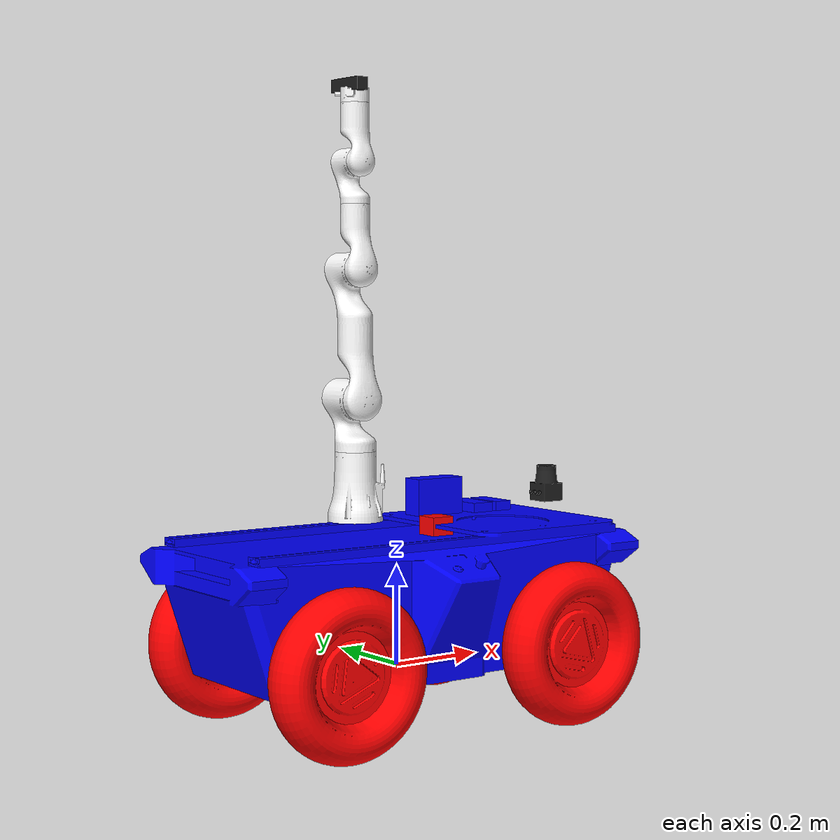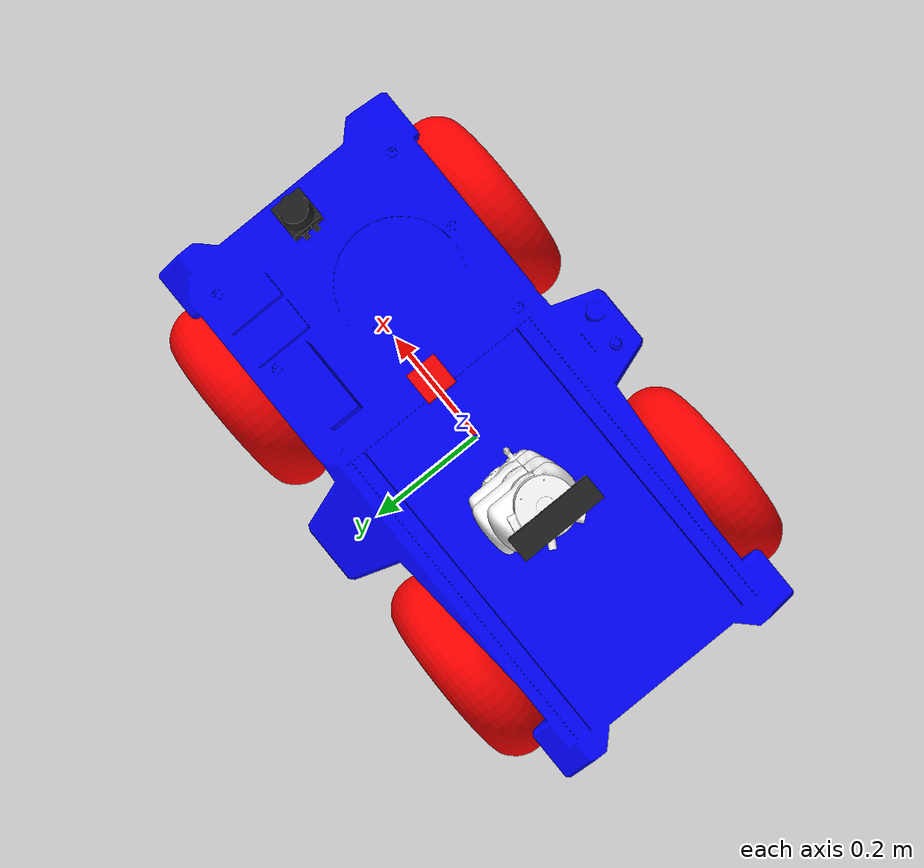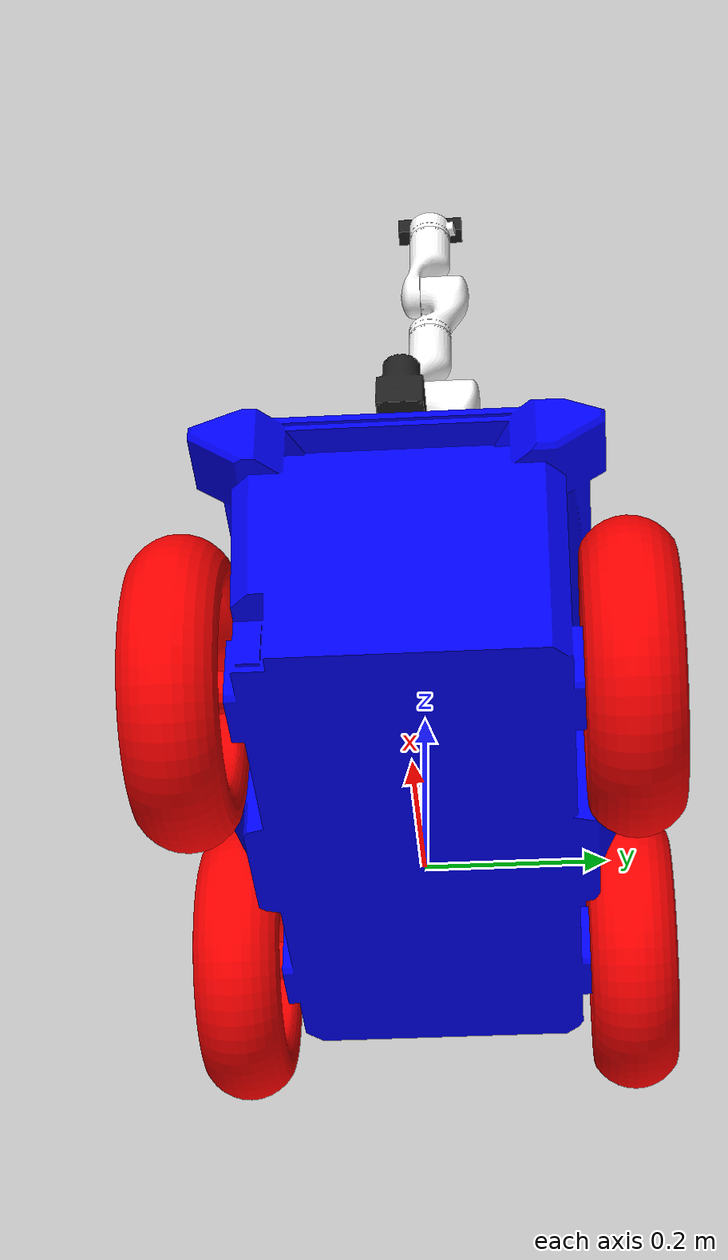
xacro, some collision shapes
<?xml version="1.0"?>
<robot name="arm" xmlns:xacro="http://www.ros.org/wiki/xacro">

    <xacro:include filename="$(find caurobot_description)/xacro/caurobot.xacro" />
    <xacro:include filename="$(find caurobot_description)/xacro/lidar_gazebo.xacro" />
    <xacro:include filename="$(find rm_65_description)/urdf/rm_65.urdf.xacro" />
    <xacro:include filename="$(find realsense_ros_gazebo)/xacro/tracker.xacro"/>
    <xacro:include filename="$(find realsense_ros_gazebo)/xacro/depthcam.xacro"/>
    <xacro:property name="M_PI" value="3.1415926"/>

     <xacro:realsense_d435 sensor_name="d435" parent_link="Link6" rate="10">
    <origin rpy="0 -${M_PI/2} ${M_PI} " xyz="0 0 0.005"/>
  </xacro:realsense_d435>
    <gazebo reference="d435_link">
     <material>Gazebo/Black</material>
 </gazebo>

    <xacro:property name="lidar_offset_x" value="0.38" />
    <xacro:property name="lidar_offset_y" value="0" />
    <xacro:property name="lidar_offset_z" value="0.30" />
    <xacro:property name="arm_offset_x" value="-0.1" />
    <xacro:property name="arm_offset_y" value="0" />
    <xacro:property name="arm_offset_z" value="0.30" />

    <!-- lidar -->
    <joint name="lidar_joint" type="fixed">
        <origin xyz="${lidar_offset_x} ${lidar_offset_y} ${lidar_offset_z}" rpy="0 0 0" />
        <parent link="base_link1"/>
        <child link="laser_link"/>
    </joint>
    <!-- lidar -->
    <joint name="arm_joint" type="fixed">
        <origin xyz="${arm_offset_x} ${arm_offset_y} ${arm_offset_z}" rpy="0 0 0" />
        <parent link="base_link1"/>
        <child link="dummy"/>
    </joint>

    <xacro:rplidar/>

    <caurobot_gazebo/>

</robot>

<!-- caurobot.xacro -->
<!-- This xacro was created by ZZX-->

<robot xmlns:xacro="http://www.ros.org/wiki/xacro"

    xmlns:sensor="http://playerstage.sourceforge.net/gazebo/xmlschema/#sensor"

    xmlns:controller="http://playerstage.sourceforge.net/gazebo/xmlschema/#controller"

    xmlns:interface="http://playerstage.sourceforge.net/gazebo/xmlschema/#interface"

    name="ls_run_robot">
<link
    name="base_link1">
    <inertial>
      <origin
        xyz="0.0046019 0.001076 0.13741"
        rpy="0 0 0" />
      <mass
        value="2000.936" />
      <inertia
        ixx="1.394"
        ixy="-0.0012908"
        ixz="-0.0010527"
        iyy="4.9931"
        iyz="-0.00089468"
        izz="5.5153" />
    </inertial>
    <visual>
      <origin
        xyz="0 0 0"
        rpy="0 0 0" />
      <geometry>
        <mesh
          filename="package://caurobot_description/meshes/base_link.STL" />
      </geometry>
      <material
        name="">
        <color
          rgba="0 0 1 1" />
      </material>
    </visual>
    <collision>
      <origin
        xyz="0 0 0"
        rpy="0 0 0" />
      <geometry>
        <mesh
          filename="package://caurobot_description/meshes/base_link.STL" />
      </geometry>
    </collision>
  </link>
  <link
    name="left_front_link">
    <inertial>
      <origin
        xyz="8.1201E-07 -0.022137 -1.9582E-06"
        rpy="0 0 0" />
      <mass
        value="15.6581" />
      <inertia
        ixx="0.045747"
        ixy="-8.2978E-08"
        ixz="-2.9744E-09"
        iyy="0.084763"
        iyz="2.001E-07"
        izz="0.045747" />
    </inertial>
    <visual>
      <origin
        xyz="0 0 0"
        rpy="0 0 0" />
      <geometry>
        <mesh
          filename="package://caurobot_description/meshes/left_front_link.STL" />
      </geometry>
      <material
        name="">
        <color
          rgba="1 0 0 1" />
      </material>
    </visual>
    <collision>
      <origin
        xyz="0 0 0"
        rpy="0 0 0" />
      <geometry>
        <mesh
          filename="package://caurobot_description/meshes/left_front_link.STL" />
      </geometry>
    </collision>
  </link>
  <joint
    name="left_front_joint"
    type="continuous">
    <origin
      xyz="0.269999999999996 0.251796098814331 0.0480000000000079"
      rpy="0 0 0" />
    <parent
      link="base_link1" />
    <child
      link="left_front_link" />
    <axis
      xyz="0 -1 0" />
  </joint>
  <link
    name="right_front_link">
    <inertial>
      <origin
        xyz="-5.0627E-07 0.022137 -2.0585E-06"
        rpy="0 0 0" />
      <mass
        value="15.6581" />
      <inertia
        ixx="0.045747"
        ixy="-5.1736E-08"
        ixz="1.9495E-09"
        iyy="0.084763"
        iyz="-2.1036E-07"
        izz="0.045747" />
    </inertial>
    <visual>
      <origin
        xyz="0 0 0"
        rpy="0 0 0" />
      <geometry>
        <mesh
          filename="package://caurobot_description/meshes/right_front_link.STL" />
      </geometry>
      <material
        name="">
        <color
          rgba="1 0 0 1" />
      </material>
    </visual>
    <collision>
      <origin
        xyz="0 0 0"
        rpy="0 0 0" />
      <geometry>
        <mesh
          filename="package://caurobot_description/meshes/right_front_link.STL" />
      </geometry>
    </collision>
  </link>
  <joint
    name="right_front_joint"
    type="continuous">
    <origin
      xyz="0.270000000000003 -0.251796098814325 0.0479999999999995"
      rpy="0 0 0" />
    <parent
      link="base_link1" />
    <child
      link="right_front_link" />
    <axis
      xyz="0 1 0" />
  </joint>
  <link
    name="left_back_link">
    <inertial>
      <origin
        xyz="8.1201E-07 -0.022137 -1.9582E-06"
        rpy="0 0 0" />
      <mass
        value="15.6581" />
      <inertia
        ixx="0.045747"
        ixy="-8.2978E-08"
        ixz="-2.9744E-09"
        iyy="0.084763"
        iyz="2.001E-07"
        izz="0.045747" />
    </inertial>
    <visual>
      <origin
        xyz="0 0 0"
        rpy="0 0 0" />
      <geometry>
        <mesh
          filename="package://caurobot_description/meshes/left_back_link.STL" />
      </geometry>
      <material
        name="">
        <color
          rgba="1 0 0 1" />
      </material>
    </visual>
    <collision>
      <origin
        xyz="0 0 0"
        rpy="0 0 0" />
      <geometry>
        <mesh
          filename="package://caurobot_description/meshes/left_back_link.STL" />
      </geometry>
    </collision>
  </link>
  <joint
    name="left_back_joint"
    type="continuous">
    <origin
      xyz="-0.270000000000004 0.251796098814323 0.0480000000000005"
      rpy="0 0 0" />
    <parent
      link="base_link1" />
    <child
      link="left_back_link" />
    <axis
      xyz="0 -1 0" />
  </joint>
  <link
    name="right_back_link">
    <inertial>
      <origin
        xyz="8.1201E-07 0.022137 -1.9582E-06"
        rpy="0 0 0" />
      <mass
        value="15.6581" />
      <inertia
        ixx="0.045747"
        ixy="8.2978E-08"
        ixz="-2.9744E-09"
        iyy="0.084763"
        iyz="-2.001E-07"
        izz="0.045747" />
    </inertial>
    <visual>
      <origin
        xyz="0 0 0"
        rpy="0 0 0" />
      <geometry>
        <mesh
          filename="package://caurobot_description/meshes/right_back_link.STL" />
      </geometry>
      <material
        name="">
        <color
          rgba="1 0 0 1" />
      </material>
    </visual>
    <collision>
      <origin
        xyz="0 0 0"
        rpy="0 0 0" />
      <geometry>
        <mesh
          filename="package://caurobot_description/meshes/right_back_link.STL" />
      </geometry>
    </collision>
  </link>
  <joint
    name="right_back_joint"
    type="continuous">
    <origin
      xyz="-0.269999999999997 -0.251796098814332 0.0479999999999922"
      rpy="0 0 0" />
    <parent
      link="base_link1" />
    <child
      link="right_back_link" />
    <axis
      xyz="0 1 0" />
  </joint>
<gazebo reference="base_link1">
            <material>Gazebo/Yellow</material>
</gazebo>
<gazebo reference="left_front_link">
            <material>Gazebo/Black</material>

</gazebo>

<gazebo reference="right_front_link">
            <material>Gazebo/Black</material>

</gazebo>

<gazebo reference="left_back_link">
            <material>Gazebo/Black</material>

</gazebo>

<gazebo reference="right_back_link">
            <material>Gazebo/Black</material>

</gazebo>

    <xacro:property name="imu_size"     value="0.05" />
    <xacro:property name="imu_m" value="0.01" /> <!-- imu质量 -->
    <xacro:property name="imu_offset_x" value="0.10" />
    <xacro:property name="imu_offset_y" value="0" />
    <xacro:property name="imu_offset_z" value="0.27" />
    <!-- imu -->

    <link name="imu">
        <visual>
            <origin rpy="0 0 0" xyz="0 0 0" />
            <geometry>
                    <box size="${imu_size} ${imu_size} ${imu_size}"/>
            </geometry>
            <material name= "red" >
              <color rgba="1.0 0.0 0.0 1.0" />
            </material>
        </visual>
        <collision>
            <geometry>
                <box size="${imu_size} ${imu_size} ${imu_size}" />
            </geometry>
            <origin xyz="0.0 0.0 0" rpy="0.0 0.0 0.0" />
        </collision>
    </link>
    <joint name="imu_joint" type="fixed">
        <origin xyz="${imu_offset_x} ${imu_offset_y} ${imu_offset_z}" rpy="0 0 0" />
        <parent link="base_link1"/>
        <child link="imu"/>
    </joint>

<!-- Transmission is important to link the joints and the controller -->
        <transmission name="left_front_joint_trans">
            <type>transmission_interface/SimpleTransmission</type>
            <joint name="left_front_joint" >
                <hardwareInterface>hardware_interface/VelocityJointInterface</hardwareInterface>
            </joint>
            <actuator name="left_front_joint_motor">
                <hardwareInterface>hardware_interface/VelocityJointInterface</hardwareInterface>
                <mechanicalReduction>1</mechanicalReduction>
            </actuator>
        </transmission>

<!-- Transmission is important to link the joints and the controller -->
        <transmission name="left_back_joint_trans">
            <type>transmission_interface/SimpleTransmission</type>
            <joint name="left_back_joint" >
                <hardwareInterface>hardware_interface/VelocityJointInterface</hardwareInterface>
            </joint>
            <actuator name="left_back_joint_motor">
                <hardwareInterface>hardware_interface/VelocityJointInterface</hardwareInterface>
                <mechanicalReduction>1</mechanicalReduction>
            </actuator>
        </transmission>

    <!-- Transmission is important to link the joints and the controller -->
        <transmission name="right_front_joint_trans">
            <type>transmission_interface/SimpleTransmission</type>
            <joint name="right_front_joint" >
                <hardwareInterface>hardware_interface/VelocityJointInterface</hardwareInterface>
            </joint>
            <actuator name="right_front_joint_motor">
                <hardwareInterface>hardware_interface/VelocityJointInterface</hardwareInterface>
                <mechanicalReduction>1</mechanicalReduction>
            </actuator>
        </transmission>

    <!-- Transmission is important to link the joints and the controller -->
        <transmission name="right_back_joint_trans">
            <type>transmission_interface/SimpleTransmission</type>
            <joint name="right_back_joint" >
                <hardwareInterface>hardware_interface/VelocityJointInterface</hardwareInterface>
            </joint>
            <actuator name="right_back_joint_motor">
                <hardwareInterface>hardware_interface/VelocityJointInterface</hardwareInterface>
                <mechanicalReduction>1</mechanicalReduction>
            </actuator>
        </transmission>

<!-- controller -->
        <gazebo>
    <plugin name="object_controller" filename="libgazebo_ros_planar_move.so">
      <commandTopic>cmd_vel</commandTopic>
      <odometryTopic>odom</odometryTopic>
      <odometryFrame>odom</odometryFrame>
      <odometryRate>20.0</odometryRate>
      <robotBaseFrame>base_link1</robotBaseFrame>
    </plugin>
  </gazebo>

   <gazebo reference="imu">
        <material>Gazebo/Red</material>
    </gazebo>

    <gazebo reference="imu">
        <gravity>true</gravity>
        <sensor name="imu_sensor" type="imu">
            <always_on>true</always_on>
            <update_rate>100</update_rate>
            <visualize>true</visualize>
            <topic>__default_topic__</topic>
            <plugin filename="libgazebo_ros_imu_sensor.so" name="imu_plugin">
                <topicName>imu_data</topicName>
                <bodyName>imu</bodyName>
                <updateRateHZ>100.0</updateRateHZ>
                <gaussianNoise>0.0</gaussianNoise>
                <xyzOffset>0 0 0</xyzOffset>
                <rpyOffset>0 0 0</rpyOffset>
                <frameName>imu</frameName>
            </plugin>
            <pose>0 0 0 0 0 0</pose>
        </sensor>
    </gazebo>

</robot>

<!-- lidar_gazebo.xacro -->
<robot xmlns:xacro="http://www.ros.org/wiki/xacro" name="laser">

    <xacro:macro name="rplidar" params="prefix:=laser">
        <!-- Create laser reference frame -->
        <link name="${prefix}_link">
            <inertial>
                <mass value="0.1" />
                <origin xyz="0 0 0" />
                <inertia ixx="0.01" ixy="0.0" ixz="0.0"
                         iyy="0.01" iyz="0.0"
                         izz="0.01" />
            </inertial>

            <visual>
                <origin xyz=" 0 0 0 " rpy="0 0 0" />
                <geometry>
                    <!--cylinder length="0.05" radius="0.05"/-->
			<mesh filename="package://caurobot_description/meshes/laser_link.STL" />
                </geometry>
                <material name="black"/>
            </visual>

            <collision>
                <origin xyz="0.0 0.0 0.0" rpy="0 0 0" />
                <geometry>
                    <cylinder length="0.06" radius="0.05"/>
                </geometry>
            </collision>
        </link>
        <gazebo reference="${prefix}_link">
            <material>Gazebo/Black</material>
        </gazebo>

        <gazebo reference="${prefix}_link">
            <sensor type="ray" name="rplidar">
                <pose>0 0 0 0 0 0</pose>
                <visualize>false</visualize>
                <update_rate>5.5</update_rate>
                <ray>
                    <scan>
                      <horizontal>
                        <samples>360</samples>
                        <resolution>1</resolution>
                        <min_angle>-3</min_angle>
                        <max_angle>3</max_angle>
                      </horizontal>
                    </scan>
                    <range>
                      <min>0.80</min>
                      <max>10.00</max>
                      <resolution>0.01</resolution>
                    </range>
                    <noise>
                      <type>gaussian</type>
                      <mean>0.0</mean>
                      <stddev>0.01</stddev>
                    </noise>
                </ray>
                <plugin name="gazebo_rplidar" filename="libgazebo_ros_laser.so">
                    <topicName>/scan</topicName>
                    <frameName>laser_link</frameName>
                </plugin>
            </sensor>
        </gazebo>

    </xacro:macro>
</robot>

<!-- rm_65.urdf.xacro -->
<robot  name="rm_65" xmlns:xacro="http://www.ros.org/wiki/xacro">
<xacro:include filename="$(find rm_65_description)/urdf/rm_65.transmission.xacro"/>
<xacro:include filename="$(find rm_65_description)/urdf/rm_65.gazebo.xacro"/>
  <link name="dummy">
  </link>
  <link
    name="base_link">
    <inertial>
      <origin
        xyz="-0.000433277303987328 -3.54664423471128E-05 0.0599427668933796"
        rpy="0 0 0" />
      <mass
        value="14" />
      <inertia
        ixx="0.0017261110801622"
        ixy="2.52746264980217E-06"
        ixz="-3.67690303614961E-05"
        iyy="0.00170987405835604"
        iyz="1.67996364994424E-06"
        izz="0.000904023422915791" />
    </inertial>
    <visual>
      <origin
        xyz="0 0 0"
        rpy="0 0 0" />
      <geometry>
        <mesh
          filename="package://rm_65_description/meshes/base_link.STL" />
      </geometry>
      <material
        name="">
        <color
          rgba="1 1 1 1" />
      </material>
    </visual>
    <collision>
      <origin
        xyz="0 0 0"
        rpy="0 0 0" />
      <geometry>
        <mesh
          filename="package://rm_65_description/meshes/base_link.STL" />
      </geometry>
    </collision>
  </link>

  <gazebo reference="base_link">
    <mu1 value="200000.0"/>
    <mu2 value="200000.0"/>
    <kp value="100000000.0"/>
    <kd value="1.0"/>
  </gazebo>

  <joint name="dummy_joint" type="fixed">
    <parent link="dummy" />
    <child link="base_link" />
  </joint>

  <link
    name="Link1">
    <inertial>
      <origin
        xyz="1.2226305431569E-08 0.0211079974844683 -0.0251854220842269"
        rpy="0 0 0" />
      <mass
        value="0.593563443690403" />
      <inertia
        ixx="0.00126614120341847"
        ixy="-1.294980943835E-08"
        ixz="-9.80120923066996E-09"
        iyy="0.00118168178300364"
        iyz="-0.00021121727444415"
        izz="0.00056135241627747" />
    </inertial>
    <visual>
      <origin
        xyz="0 0 0"
        rpy="0 0 0" />
      <geometry>
        <mesh
          filename="package://rm_65_description/meshes/link1.STL" />
      </geometry>
      <material
        name="">
        <color
          rgba="1 1 1 1" />
      </material>
    </visual>
    <collision>
      <origin
        xyz="0 0 0"
        rpy="0 0 0" />
      <geometry>
        <mesh
          filename="package://rm_65_description/meshes/link1.STL" />
      </geometry>
    </collision>
  </link>
  <joint
    name="joint1"
    type="revolute">
    <origin
      xyz="0 0 0.2405"
      rpy="0 0 0" />
    <parent
      link="base_link" />
    <child
      link="Link1" />
    <axis
      xyz="0 0 1" />
    <limit
      lower="-3.1"
      upper="3.1"
      effort="60"
      velocity="3.14" />
	<dynamics damping="50" friction="1"/>
  </joint>
  <link
    name="Link2">
    <inertial>
      <origin
        xyz="0.152256463426163 4.75383656106654E-07 -0.00620260383607792"
        rpy="0 0 0" />
      <mass
        value="0.864175046869043" />
      <inertia
        ixx="0.00089150298478414"
        ixy="-2.23268489334765E-08"
        ixz="0.00156246461035015"
        iyy="0.00733754343083901"
        iyz="6.28110889329165E-09"
        izz="0.00697869103915473" />
    </inertial>
    <visual>
      <origin
        xyz="0 0 0"
        rpy="0 0 0" />
      <geometry>
        <mesh
          filename="package://rm_65_description/meshes/link2.STL" />
      </geometry>
      <material
        name="">
        <color
          rgba="1 1 1 1" />
      </material>
    </visual>
    <collision>
      <origin
        xyz="0 0 0"
        rpy="0 0 0" />
      <geometry>
        <mesh
          filename="package://rm_65_description/meshes/link2.STL" />
      </geometry>
    </collision>
  </link>
  <joint
    name="joint2"
    type="revolute">
    <origin
      xyz="0 0 0"
      rpy="1.5708 -1.5708 0" />
    <parent
      link="Link1" />
    <child
      link="Link2" />
    <axis
      xyz="0 0 1" />
    <limit
      lower="-2.268"
      upper="2.268"
      effort="60"
      velocity="3.14" />
	<dynamics damping="50" friction="1"/>
  </joint>
  <link
    name="Link3">
    <inertial>
      <origin
        xyz="5.05312670989961E-06 -0.0595925663694732 0.010569069212336"
        rpy="0 0 0" />
      <mass
        value="0.289633681624654" />
      <inertia
        ixx="0.00063737100450158"
        ixy="-7.05261293649751E-08"
        ixz="-3.86643272239426E-08"
        iyy="0.00015648388095025"
        iyz="-0.00014461035994916"
        izz="0.000614178164773085" />
    </inertial>
    <visual>
      <origin
        xyz="0 0 0"
        rpy="0 0 0" />
      <geometry>
        <mesh
          filename="package://rm_65_description/meshes/link3.STL" />
      </geometry>
      <material
        name="">
        <color
          rgba="1 1 1 1" />
      </material>
    </visual>
    <collision>
      <origin
        xyz="0 0 0"
        rpy="0 0 0" />
      <geometry>
        <mesh
          filename="package://rm_65_description/meshes/link3.STL" />
      </geometry>
    </collision>
  </link>
  <joint
    name="joint3"
    type="revolute">
    <origin
      xyz="0.256 0 0"
      rpy="0 0 1.5708" />
    <parent
      link="Link2" />
    <child
      link="Link3" />
    <axis
      xyz="0 0 1" />
    <limit
      lower="-2.355"
      upper="2.355"
      effort="30"
      velocity="3.92" />
	<dynamics damping="50" friction="1"/>
  </joint>
  <link
    name="Link4">
    <inertial>
      <origin
        xyz="1.15516617405898E-06 -0.0180424468598241 -0.0215394748352687"
        rpy="0 0 0" />
      <mass
        value="0.239419768320061" />
      <inertia
        ixx="0.000285938919722783"
        ixy="3.07101359163101E-09"
        ixz="-2.21994118981953E-09"
        iyy="0.000262727540304212"
        iyz="4.4236583260078E-05"
        izz="0.000119888082791859" />
    </inertial>
    <visual>
      <origin
        xyz="0 0 0"
        rpy="0 0 0" />
      <geometry>
        <mesh
          filename="package://rm_65_description/meshes/link4.STL" />
      </geometry>
      <material
        name="">
        <color
          rgba="1 1 1 1" />
      </material>
    </visual>
    <collision>
      <origin
        xyz="0 0 0"
        rpy="0 0 0" />
      <geometry>
        <mesh
          filename="package://rm_65_description/meshes/link4.STL" />
      </geometry>
    </collision>
  </link>
  <joint
    name="joint4"
    type="revolute">
    <origin
      xyz="0 -0.21 0"
      rpy="1.5708 0 0" />
    <parent
      link="Link3" />
    <child
      link="Link4" />
    <axis
      xyz="0 0 1" />
    <limit
      lower="-3.1"
      upper="3.1"
      effort="10"
      velocity="3.92" />
	<dynamics damping="50" friction="1"/>
  </joint>
  <link
    name="Link5">
    <inertial>
      <origin
        xyz="3.19794786262152E-06 -0.0593808368101458 0.00736804250989326"
        rpy="0 0 0" />
      <mass
        value="0.218799761431678" />
      <inertia
        ixx="0.000350540363914072"
        ixy="-3.41781619975602E-08"
        ixz="-1.77056457224373E-08"
        iyy="0.000104927867487581"
        iyz="-7.82431228461971E-05"
        izz="0.000334482418423629" />
    </inertial>
    <visual>
      <origin
        xyz="0 0 0"
        rpy="0 0 0" />
      <geometry>
        <mesh
          filename="package://rm_65_description/meshes/link5.STL" />
      </geometry>
      <material
        name="">
        <color
          rgba="1 1 1 1" />
      </material>
    </visual>
    <collision>
      <origin
        xyz="0 0 0"
        rpy="0 0 0" />
      <geometry>
        <mesh
          filename="package://rm_65_description/meshes/link5.STL" />
      </geometry>
    </collision>
  </link>
  <joint
    name="joint5"
    type="revolute">
    <origin
      xyz="0 0 0"
      rpy="-1.5708 0 0" />
    <parent
      link="Link4" />
    <child
      link="Link5" />
    <axis
      xyz="0 0 1" />
    <limit
      lower="-2.233"
      upper="2.233"
      effort="10"
      velocity="3.92" />
	<dynamics damping="50" friction="1"/>
  </joint>
  <link
    name="Link6">
    <inertial>
      <origin
        xyz="0.000714234511756999 -0.000396718732824521 -0.0126723660946126"
        rpy="0 0 0" />
      <mass
        value="0.0649018034311231" />
      <inertia
        ixx="2.02766547502765E-05"
        ixy="-1.32505200276849E-06"
        ixz="-2.5845091522508E-08"
        iyy="1.87986725225022E-05"
        iyz="3.39471452125439E-09"
        izz="3.17885459163081E-05" />
    </inertial>
    <visual>
      <origin
        xyz="0 0 0"
        rpy="0 0 0" />
      <geometry>
        <mesh
          filename="package://rm_65_description/meshes/link6.STL" />
      </geometry>
      <material
        name="">
        <color
          rgba="1 1 1 1" />
      </material>
    </visual>
    <collision>
      <origin
        xyz="0 0 0"
        rpy="0 0 0" />
      <geometry>
        <mesh
          filename="package://rm_65_description/meshes/link6.STL" />
      </geometry>
    </collision>
  </link>
  <joint
    name="joint6"
    type="revolute">
    <origin
      xyz="0 -0.144 0"
      rpy="1.5708 0 0" />
    <parent
      link="Link5" />
    <child
      link="Link6" />
    <axis
      xyz="0 0 1" />
    <limit
      lower="-6.28"
      upper="6.28"
      effort="10"
      velocity="3.92" />
	<dynamics damping="50" friction="1"/>
  </joint>

  <!-- Transmissions for ROS Control -->
  <xacro:macro name="transmission_block" params="joint_name">
    <transmission name="tran1">
      <type>transmission_interface/SimpleTransmission</type>
      <joint name="${joint_name}">
        <hardwareInterface>hardware_interface/PositionJointInterface</hardwareInterface>
      </joint>
      <actuator name="motor1">
        <hardwareInterface>hardware_interface/PositionJointInterface</hardwareInterface>
        <mechanicalReduction>1</mechanicalReduction>
      </actuator>
    </transmission>
  </xacro:macro>

  <xacro:transmission_block joint_name="joint1"/>
  <xacro:transmission_block joint_name="joint2"/>
  <xacro:transmission_block joint_name="joint3"/>
  <xacro:transmission_block joint_name="joint4"/>
  <xacro:transmission_block joint_name="joint5"/>
  <xacro:transmission_block joint_name="joint6"/>

  <!-- ros_control plugin -->
  <gazebo>
    <plugin name="gazebo_ros_control" filename="libgazebo_ros_control.so">
      <robotNamespace>/arm</robotNamespace>
      <robotSimType>gazebo_ros_control/DefaultRobotHWSim</robotSimType>
      <legacyModeNS>true</legacyModeNS>
    </plugin>
  </gazebo>
</robot>

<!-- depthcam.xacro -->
<robot xmlns:xacro="http://www.ros.org/wiki/xacro">

  <xacro:include filename="$(find realsense_ros_gazebo)/xacro/inertia_calc.xacro"/>

  <!-- INTEL REALSENSE D435 -->

  <xacro:macro name="realsense_d435" params="sensor_name parent_link *origin rate">

    <xacro:property name="d435_cam_depth_to_left_ir_offset" value="0.0"/>
    <xacro:property name="d435_cam_depth_to_right_ir_offset" value="-0.050"/>
    <xacro:property name="d435_cam_depth_to_color_offset" value="0.015"/>
    <xacro:property name="d435_cam_width" value="0.090"/>
    <xacro:property name="d435_cam_height" value="0.025"/>
    <xacro:property name="d435_cam_depth" value="0.02505"/>
    <xacro:property name="d435_cam_mass" value="0.564"/>
    <xacro:property name="d435_cam_mount_from_center_offset" value="0.0149"/>
    <xacro:property name="d435_cam_depth_px" value="${d435_cam_mount_from_center_offset}"/>
    <xacro:property name="d435_cam_depth_py" value="0.0175"/>
    <xacro:property name="d435_cam_depth_pz" value="${d435_cam_height/2}"/>

    <!-- camera body, with origin at bottom screw mount -->
    <joint name="${sensor_name}_joint" type="fixed">
      <xacro:insert_block name="origin" />
      <parent link="${parent_link}"/>
      <child link="${sensor_name}_bottom_screw_frame" />
    </joint>
    <link name="${sensor_name}_bottom_screw_frame"/>

    <joint name="${sensor_name}_link_joint" type="fixed">
      <origin xyz="0 ${d435_cam_depth_py} ${d435_cam_depth_pz}" rpy="0 0 0"/>
      <parent link="${sensor_name}_bottom_screw_frame"/>
      <child link="${sensor_name}_link" />
    </joint>

    <link name="${sensor_name}_link">
      <visual>
        <origin xyz="${d435_cam_mount_from_center_offset} ${-d435_cam_depth_py} 0" rpy="${pi/2} 0 ${pi/2}"/>
        <geometry>
          <mesh filename="package://realsense_ros_gazebo/meshes/realsense_d435.stl" />
        </geometry>
      </visual>
      <collision>
        <origin xyz="0 ${-d435_cam_depth_py} 0" rpy="0 0 0"/>
        <geometry>
          <box size="${d435_cam_depth} ${d435_cam_width} ${d435_cam_height}"/>
        </geometry>
      </collision>
      <inertial>
        <mass value="${d435_cam_mass}" />
        <origin xyz="0 ${-d435_cam_depth_py} 0" rpy="0 0 0"/>
        <xacro:box_inertia m="${d435_cam_mass}" x="${d435_cam_depth}" y="${d435_cam_width}" z="${d435_cam_height}"/>
      </inertial>
    </link>

    <!-- camera depth joints and links -->
    <joint name="${sensor_name}_depth_joint" type="fixed">
      <origin xyz="0 0 0" rpy="0 0 0"/>
      <parent link="${sensor_name}_link"/>
      <child link="${sensor_name}_depth_frame" />
    </joint>
    <link name="${sensor_name}_depth_frame"/>

    <joint name="${sensor_name}_depth_optical_joint" type="fixed">
      <origin xyz="0 0 0" rpy="${-pi/2} 0 ${-pi/2}" />
      <parent link="${sensor_name}_depth_frame" />
      <child link="${sensor_name}_depth_optical_frame" />
    </joint>
    <link name="${sensor_name}_depth_optical_frame"/>

    <!-- camera left IR joints and links -->
    <joint name="${sensor_name}_left_ir_joint" type="fixed">
      <origin xyz="0 ${d435_cam_depth_to_left_ir_offset} 0" rpy="0 0 0" />
      <parent link="${sensor_name}_depth_frame" />
      <child link="${sensor_name}_left_ir_frame" />
    </joint>
    <link name="${sensor_name}_left_ir_frame"/>

    <joint name="${sensor_name}_left_ir_optical_joint" type="fixed">
      <origin xyz="0 0 0" rpy="${-pi/2} 0 ${-pi/2}" />
      <parent link="${sensor_name}_left_ir_frame" />
      <child link="${sensor_name}_left_ir_optical_frame" />
    </joint>
    <link name="${sensor_name}_left_ir_optical_frame"/>

    <!-- camera right IR joints and links -->
    <joint name="${sensor_name}_right_ir_joint" type="fixed">
      <origin xyz="0 ${d435_cam_depth_to_right_ir_offset} 0" rpy="0 0 0" />
      <parent link="${sensor_name}_depth_frame" />
      <child link="${sensor_name}_right_ir_frame" />
    </joint>
    <link name="${sensor_name}_right_ir_frame"/>

    <joint name="${sensor_name}_right_ir_optical_joint" type="fixed">
      <origin xyz="0 0 0" rpy="${-pi/2} 0 ${-pi/2}" />
      <parent link="${sensor_name}_right_ir_frame" />
      <child link="${sensor_name}_right_ir_optical_frame" />
    </joint>
    <link name="${sensor_name}_right_ir_optical_frame"/>

    <!-- camera color joints and links -->
    <joint name="${sensor_name}_color_joint" type="fixed">
      <origin xyz="0 ${d435_cam_depth_to_color_offset} 0" rpy="0 0 0" />
      <parent link="${sensor_name}_depth_frame" />
      <child link="${sensor_name}_color_frame" />
    </joint>
    <link name="${sensor_name}_color_frame"/>

    <joint name="${sensor_name}_color_optical_joint" type="fixed">
      <origin xyz="0 0 0" rpy="${-pi/2} 0 ${-pi/2}" />
      <parent link="${sensor_name}_color_frame" />
      <child link="${sensor_name}_color_optical_frame" />
    </joint>
    <link name="${sensor_name}_color_optical_frame"/>

    <!-- gazebo plugin -->

    <xacro:property name="deg_to_rad" value="0.01745329251994329577" />

    <gazebo reference="${sensor_name}_link">
      <self_collide>0</self_collide>
      <enable_wind>0</enable_wind>
      <kinematic>0</kinematic>
      <gravity>1</gravity>
      <mu2>1</mu2>
      <fdir1>0 0 0</fdir1>
      <kp>1e+13</kp>
      <kd>1</kd>

      <sensor name="${sensor_name}_color" type="camera">
        <camera name="${sensor_name}">
          <horizontal_fov>${85.2*deg_to_rad}</horizontal_fov>
          <image>
            <width>1920</width>
            <height>1080</height>
            <format>RGB_INT8</format>
          </image>
          <clip>
            <near>0.1</near>
            <far>100</far>
          </clip>
          <noise>
            <type>gaussian</type>
            <mean>0.0</mean>
            <stddev>0.007</stddev>
          </noise>
        </camera>
        <always_on>1</always_on>
        <update_rate>30</update_rate>
        <visualize>1</visualize>
      </sensor>
      <sensor name="${sensor_name}_ired1" type="camera">
        <camera name="${sensor_name}">
          <horizontal_fov>${85.2*deg_to_rad}</horizontal_fov>
          <image>
            <width>1280</width>
            <height>720</height>
            <format>L_INT8</format>
          </image>
          <clip>
            <near>0.1</near>
            <far>100</far>
          </clip>
          <noise>
            <type>gaussian</type>
            <mean>0.0</mean>
            <stddev>0.05</stddev>
          </noise>
        </camera>
        <always_on>1</always_on>
        <update_rate>90</update_rate>
        <visualize>0</visualize>
      </sensor>
      <sensor name="${sensor_name}_ired2" type="camera">
        <camera name="${sensor_name}">
          <horizontal_fov>${85.2*deg_to_rad}</horizontal_fov>
          <image>
            <width>1280</width>
            <height>720</height>
            <format>L_INT8</format>
          </image>
          <clip>
            <near>0.1</near>
            <far>100</far>
          </clip>
          <noise>
            <type>gaussian</type>
            <mean>0.0</mean>
            <stddev>0.05</stddev>
          </noise>
        </camera>
        <always_on>1</always_on>
        <update_rate>90</update_rate>
        <visualize>0</visualize>
      </sensor>
      <sensor name="${sensor_name}_depth" type="depth">
        <camera name="${sensor_name}">
          <horizontal_fov>${85.2*deg_to_rad}</horizontal_fov>
          <image>
            <width>1920</width>
            <height>1080</height>
          </image>
          <clip>
            <near>0.1</near>
            <far>100</far>
          </clip>
          <noise>
            <type>gaussian</type>
            <mean>0.0</mean>
            <stddev>0.100</stddev>
          </noise>
        </camera>
        <always_on>1</always_on>
        <update_rate>90</update_rate>
        <visualize>0</visualize>
      </sensor>
    </gazebo>

    <gazebo>
      <plugin name="${sensor_name}" filename="librealsense_gazebo_plugin.so">
        <prefix>${sensor_name}_</prefix>
        <depthUpdateRate>${rate}</depthUpdateRate>
        <colorUpdateRate>${rate}</colorUpdateRate>
        <infraredUpdateRate>${rate}</infraredUpdateRate>
        <depthTopicName>depth/image_raw</depthTopicName>
        <depthCameraInfoTopicName>depth/camera_info</depthCameraInfoTopicName>
        <colorTopicName>color/image_raw</colorTopicName>
        <colorCameraInfoTopicName>color/camera_info</colorCameraInfoTopicName>
        <infrared1TopicName>infra1/image_raw</infrared1TopicName>
        <infrared1CameraInfoTopicName>infra1/camera_info</infrared1CameraInfoTopicName>
        <infrared2TopicName>infra2/image_raw</infrared2TopicName>
        <infrared2CameraInfoTopicName>infra2/camera_info</infrared2CameraInfoTopicName>
        <colorOpticalframeName>${sensor_name}_color_optical_frame</colorOpticalframeName>
        <depthOpticalframeName>${sensor_name}_depth_optical_frame</depthOpticalframeName>
        <infrared1OpticalframeName>${sensor_name}_infrared1_optical_frame</infrared1OpticalframeName>
        <infrared2OpticalframeName>${sensor_name}_infrared2_optical_frame</infrared2OpticalframeName>
        <rangeMinDepth>0.2</rangeMinDepth>
        <rangeMaxDepth>10.0</rangeMaxDepth>
        <pointCloud>true</pointCloud>
        <pointCloudTopicName>depth/color/points</pointCloudTopicName>
        <pointCloudCutoff>0.25</pointCloudCutoff>
        <pointCloudCutoffMax>9.0</pointCloudCutoffMax>
      </plugin>
    </gazebo>

  </xacro:macro>

  <!-- INTEL REALSENSE R200 -->

  <xacro:macro name="realsense_R200" params="sensor_name parent_link rate *origin">

      <link name="${sensor_name}_R200_camera">
          <visual>
              <origin rpy="0 0 0" xyz="0 0 0"/>
              <geometry>
                  <mesh filename="package://realsense_ros_gazebo/meshes/realsense_r200/meshes/realsense.dae"/>
              </geometry>
          </visual>
          <collision>
              <geometry>
                  <box size="0.0078 0.130 0.0192"/>
              </geometry>
          </collision>
          <inertial>
              <mass value="0.0615752"/>
              <origin rpy="0 0 0" xyz="0 0 0"/>
              <inertia ixx="9.108e-05"
                       ixy="0"
                       ixz="0"
                       iyy="2.51e-06"
                       iyz="0"
                       izz="8.931e-05"/>
          </inertial>
      </link>

      <joint name="${sensor_name}_joint" type="fixed">
          <parent link="${parent_link}"/>
          <child link="${sensor_name}_R200_camera"/>
          <xacro:insert_block name="origin"/>
      </joint>

      <link name="${sensor_name}_color" />
      <link name="${sensor_name}_depth" />
      <link name="${sensor_name}_ired1" />
      <link name="${sensor_name}_ired2" />

      <joint name="${sensor_name}_color_joint" type="fixed">
          <parent link="${sensor_name}_R200_camera" />
          <child link="${sensor_name}_color" />
          <origin xyz="0 -0.046 0.004" rpy="${pi/2} ${pi} ${pi/2}"/>
      </joint>

      <joint name="${sensor_name}_depth_joint" type="fixed">
          <parent link="${sensor_name}_R200_camera" />
          <child link="${sensor_name}_depth" />
          <origin xyz="0 -0.03 0.004" rpy="0 0 0"/>
      </joint>

      <joint name="${sensor_name}_ired1_joint" type="fixed">
          <parent link="${sensor_name}_R200_camera" />
          <child link="${sensor_name}_ired1" />
          <origin xyz="0 -0.06 0.004" rpy="0 0 0"/>
      </joint>

      <joint name="${sensor_name}_ired2_joint" type="fixed">
          <parent link="${sensor_name}_R200_camera" />
          <child link="${sensor_name}_ired2" />
          <origin xyz="0 0.01 0.004" rpy="0 0 0"/>
      </joint>

      <gazebo reference="${sensor_name}_R200_camera">

          <self_collide>0</self_collide>
          <enable_wind>0</enable_wind>
          <kinematic>0</kinematic>
          <gravity>1</gravity>
          <mu>1</mu>
          <mu2>1</mu2>
          <fdir1>0 0 0</fdir1>
          <slip1>0</slip1>
          <slip2>0</slip2>
          <kp>1e+13</kp>
          <kd>1</kd>
          <max_vel>0.01</max_vel>
          <min_depth>0</min_depth>

          <sensor name="${sensor_name}_color" type="camera">
              <pose frame="">0 -0.046 0.004 0 0 0</pose>
              <camera name="${sensor_name}_R200_camera">
              <horizontal_fov>1.047</horizontal_fov>
              <image>
                  <width>640</width>
                  <height>480</height>
                  <format>RGB_INT8</format>
              </image>
              <clip>
                  <near>0.1</near>
                  <far>100</far>
              </clip>
              <noise>
                  <type>gaussian</type>
                  <mean>0.0</mean>
                  <stddev>0.007</stddev>
              </noise>
              </camera>
              <always_on>1</always_on>
              <update_rate>${rate}</update_rate>
              <visualize>1</visualize>
          </sensor>
          <sensor name="${sensor_name}_ired1" type="camera">
              <pose frame="">0 -0.06 0.004 0 0 0</pose>
              <camera name="${sensor_name}_R200_camera">
              <horizontal_fov>1.047</horizontal_fov>
              <image>
                  <width>640</width>
                  <height>480</height>
                  <format>L_INT8</format>
              </image>
              <clip>
                  <near>0.1</near>
                  <far>100</far>
              </clip>
              <noise>
                  <type>gaussian</type>
                  <mean>0.0</mean>
                  <stddev>0.05</stddev>
              </noise>
              </camera>
              <always_on>1</always_on>
              <update_rate>${rate}</update_rate>
              <visualize>0</visualize>
          </sensor>
          <sensor name="${sensor_name}_ired2" type="camera">
              <pose frame="">0 0.01 0.004 0 0 0</pose>
              <camera name="${sensor_name}_R200_camera">
              <horizontal_fov>1.047</horizontal_fov>
              <image>
                  <width>640</width>
                  <height>480</height>
                  <format>L_INT8</format>
              </image>
              <clip>
                  <near>0.1</near>
                  <far>100</far>
              </clip>
              <noise>
                  <type>gaussian</type>
                  <mean>0.0</mean>
                  <stddev>0.05</stddev>
              </noise>
              </camera>
              <always_on>1</always_on>
              <update_rate>${rate}</update_rate>
              <visualize>0</visualize>
          </sensor>
          <sensor name="${sensor_name}_depth" type="depth">
              <pose frame="">0 -0.03 0.004 0 0 0</pose>
              <camera name="${sensor_name}_R200_camera">
              <horizontal_fov>1.047</horizontal_fov>
              <image>
                      <width>640</width>
                      <height>480</height>
              </image>
              <clip>
                      <near>0.1</near>
                      <far>100</far>
              </clip>
              <noise>
                      <type>gaussian</type>
                      <mean>0.0</mean>
                      <stddev>0.100</stddev>
              </noise>
              </camera>
              <always_on>1</always_on>
              <update_rate>60</update_rate>
              <visualize>0</visualize>
          </sensor>
      </gazebo>

      <gazebo>
        <plugin name="${sensor_name}" filename="librealsense_gazebo_plugin.so">
          <prefix>${sensor_name}_</prefix>
          <depthUpdateRate>${rate}</depthUpdateRate>
          <colorUpdateRate>${rate}</colorUpdateRate>
          <infraredUpdateRate>${rate}</infraredUpdateRate>
          <depthTopicName>depth/image_raw</depthTopicName>
          <depthCameraInfoTopicName>depth/camera_info</depthCameraInfoTopicName>
          <colorTopicName>color/image_raw</colorTopicName>
          <colorCameraInfoTopicName>color/camera_info</colorCameraInfoTopicName>
          <infrared1TopicName>infra1/image_raw</infrared1TopicName>
          <infrared1CameraInfoTopicName>infra1/camera_info</infrared1CameraInfoTopicName>
          <infrared2TopicName>infra2/image_raw</infrared2TopicName>
          <infrared2CameraInfoTopicName>infra2/camera_info</infrared2CameraInfoTopicName>
          <colorOpticalframeName>${sensor_name}_color_optical_frame</colorOpticalframeName>
          <depthOpticalframeName>${sensor_name}_depth_optical_frame</depthOpticalframeName>
          <infrared1OpticalframeName>${sensor_name}_infrared1_optical_frame</infrared1OpticalframeName>
          <infrared2OpticalframeName>${sensor_name}_infrared2_optical_frame</infrared2OpticalframeName>
          <rangeMinDepth>0.2</rangeMinDepth>
          <rangeMaxDepth>10.0</rangeMaxDepth>
          <pointCloud>false</pointCloud>
          <pointCloudTopicName>depth/color/points</pointCloudTopicName>
          <pointCloudCutoff>0.25</pointCloudCutoff>
          <pointCloudCutoffMax>9.0</pointCloudCutoffMax>
        </plugin>
      </gazebo>

  </xacro:macro>

</robot>
